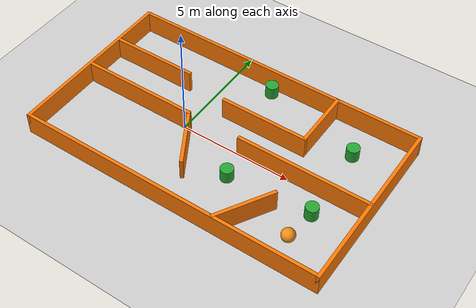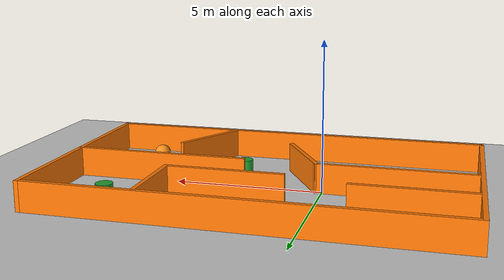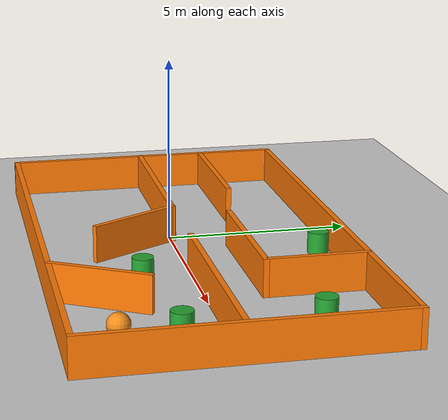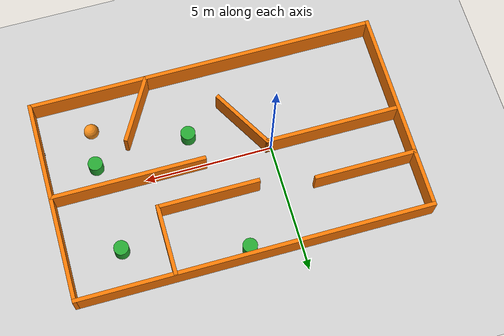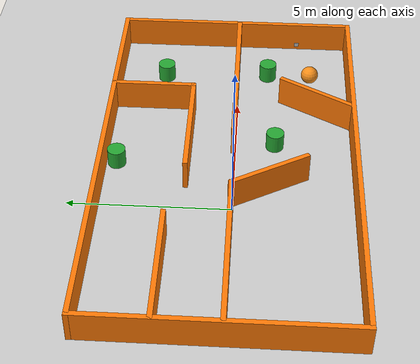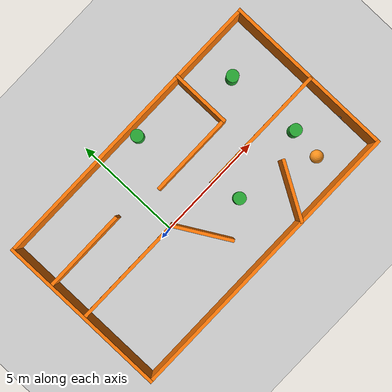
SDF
<sdf version="1.6">
 <world name="default">
  <model name="ground_plane">
   <static>1</static>
   <link name="link">
    <collision name="collision">
     <geometry><plane><normal>0 0 1</normal><size>100 100</size></plane></geometry>
     <surface><friction><ode><mu>100</mu><mu2>50</mu2></ode></friction></surface>
    </collision>
    <visual name="visual">
     <cast_shadows>0</cast_shadows>
     <geometry><plane><normal>0 0 1</normal><size>100 100</size></plane></geometry>
     <material>
      <script><uri>file://media/materials/scripts/gazebo.material</uri><name>Gazebo/Grey</name></script>
     </material>
    </visual>
   </link>
  </model>
  <model name="final_maze">
   <pose>1.767 0.166 0 0 -0 0</pose>
   <link name="Wall_0">
    <collision name="Wall_0_Collision">
     <geometry><box><size>8 0.15 1</size></box></geometry>
     <pose>0 0 0.5 0 -0 0</pose>
    </collision>
    <visual name="Wall_0_Visual">
     <pose>0 0 0.5 0 -0 0</pose>
     <geometry><box><size>8 0.15 1</size></box></geometry>
     <material>
      <script><uri>file://media/materials/scripts/gazebo.material</uri><name>Gazebo/Grey</name></script>
      <ambient>0.996078 0.47451 0.0196078 1</ambient>
     </material>
     <meta><layer>0</layer></meta>
    </visual>
    <pose>-6.8 0 0 0 -0 -1.5708</pose>
   </link>
   <link name="Wall_10">
    <collision name="Wall_10_Collision">
     <geometry><box><size>6 0.15 1</size></box></geometry>
     <pose>0 0 0.5 0 -0 0</pose>
    </collision>
    <visual name="Wall_10_Visual">
     <pose>0 0 0.5 0 -0 0</pose>
     <geometry><box><size>6 0.15 1</size></box></geometry>
     <material>
      <script><uri>file://media/materials/scripts/gazebo.material</uri><name>Gazebo/Grey</name></script>
      <ambient>0.996078 0.47451 0.0196078 1</ambient>
     </material>
     <meta><layer>0</layer></meta>
    </visual>
    <pose>3.835 -0.107 0 0 -0 0</pose>
   </link>
   <link name="Wall_12">
    <collision name="Wall_12_Collision">
     <geometry><box><size>2.75 0.15 1</size></box></geometry>
     <pose>0 0 0.5 0 -0 0</pose>
    </collision>
    <visual name="Wall_12_Visual">
     <pose>0 0 0.5 0 -0 0</pose>
     <geometry><box><size>2.75 0.15 1</size></box></geometry>
     <material>
      <script><uri>file://media/materials/scripts/gazebo.material</uri><name>Gazebo/Grey</name></script>
      <ambient>0.996078 0.47451 0.0196078 1</ambient>
     </material>
     <meta><layer>0</layer></meta>
    </visual>
    <pose>-0.92 -1.257 0 0 -0 -1.04726</pose>
   </link>
   <link name="Wall_14">
    <collision name="Wall_14_Collision">
     <geometry><box><size>2.75 0.15 1</size></box></geometry>
     <pose>0 0 0.5 0 -0 0</pose>
    </collision>
    <visual name="Wall_14_Visual">
     <pose>0 0 0.5 0 -0 0</pose>
     <geometry><box><size>2.75 0.15 1</size></box></geometry>
     <material>
      <script><uri>file://media/materials/scripts/gazebo.material</uri><name>Gazebo/Grey</name></script>
      <ambient>0.996078 0.47451 0.0196078 1</ambient>
     </material>
     <meta><layer>0</layer></meta>
    </visual>
    <pose>3.062 2.596 0 0 -0 -1.5708</pose>
   </link>
   <link name="Wall_16">
    <collision name="Wall_16_Collision">
     <geometry><box><size>4 0.15 1</size></box></geometry>
     <pose>0 0 0.5 0 -0 0</pose>
    </collision>
    <visual name="Wall_16_Visual">
     <pose>0 0 0.5 0 -0 0</pose>
     <geometry><box><size>4 0.15 1</size></box></geometry>
     <material>
      <script><uri>file://media/materials/scripts/gazebo.material</uri><name>Gazebo/Grey</name></script>
      <ambient>0.996078 0.47451 0.0196078 1</ambient>
     </material>
     <meta><layer>0</layer></meta>
    </visual>
    <pose>-4.862 1.764 0 0 -0 0</pose>
   </link>
   <link name="Wall_19">
    <collision name="Wall_19_Collision">
     <geometry><box><size>2.75 0.15 1</size></box></geometry>
     <pose>0 0 0.5 0 -0 0</pose>
    </collision>
    <visual name="Wall_19_Visual">
     <pose>0 0 0.5 0 -0 0</pose>
     <geometry><box><size>2.75 0.15 1</size></box></geometry>
     <material>
      <script><uri>file://media/materials/scripts/gazebo.material</uri><name>Gazebo/Grey</name></script>
      <ambient>0.996078 0.47451 0.0196078 1</ambient>
     </material>
     <meta><layer>0</layer></meta>
    </visual>
    <pose>2.908 -2.76468 0 0 -0 1.0472</pose>
   </link>
   <link name="Wall_23">
    <collision name="Wall_23_Collision">
     <geometry><box><size>4 0.15 1</size></box></geometry>
     <pose>0 0 0.5 0 -0 0</pose>
    </collision>
    <visual name="Wall_23_Visual">
     <pose>0 0 0.5 0 -0 0</pose>
     <geometry><box><size>4 0.15 1</size></box></geometry>
     <material>
      <script><uri>file://media/materials/scripts/gazebo.material</uri><name>Gazebo/Grey</name></script>
      <ambient>0.996078 0.47451 0.0196078 1</ambient>
     </material>
     <meta><layer>0</layer></meta>
    </visual>
    <pose>1.137 1.296 0 0 -0 3.14159</pose>
   </link>
   <link name="Wall_3">
    <collision name="Wall_3_Collision">
     <geometry><box><size>13.75 0.15 1</size></box></geometry>
     <pose>0 0 0.5 0 -0 0</pose>
    </collision>
    <visual name="Wall_3_Visual">
     <pose>0 0 0.5 0 -0 0</pose>
     <geometry><box><size>13.75 0.15 1</size></box></geometry>
     <material>
      <script><uri>file://media/materials/scripts/gazebo.material</uri><name>Gazebo/Grey</name></script>
      <ambient>0.996078 0.47451 0.0196078 1</ambient>
     </material>
     <meta><layer>0</layer></meta>
    </visual>
    <pose>-0 -3.925 0 0 -0 0</pose>
   </link>
   <link name="Wall_5">
    <collision name="Wall_5_Collision">
     <geometry><box><size>8 0.15 1</size></box></geometry>
     <pose>0 0 0.5 0 -0 0</pose>
    </collision>
    <visual name="Wall_5_Visual">
     <pose>0 0 0.5 0 -0 0</pose>
     <geometry><box><size>8 0.15 1</size></box></geometry>
     <material>
      <script><uri>file://media/materials/scripts/gazebo.material</uri><name>Gazebo/Grey</name></script>
      <ambient>0.996078 0.47451 0.0196078 1</ambient>
     </material>
     <meta><layer>0</layer></meta>
    </visual>
    <pose>6.8 0 0 0 -0 1.5708</pose>
   </link>
   <link name="Wall_6">
    <collision name="Wall_6_Collision">
     <geometry><box><size>13.75 0.15 1</size></box></geometry>
     <pose>0 0 0.5 0 -0 0</pose>
    </collision>
    <visual name="Wall_6_Visual">
     <pose>0 0 0.5 0 -0 0</pose>
     <geometry><box><size>13.75 0.15 1</size></box></geometry>
     <material>
      <script><uri>file://media/materials/scripts/gazebo.material</uri><name>Gazebo/Grey</name></script>
      <ambient>0.996078 0.47451 0.0196078 1</ambient>
     </material>
     <meta><layer>0</layer></meta>
    </visual>
    <pose>-0 3.925 0 0 -0 3.14159</pose>
   </link>
   <link name="Wall_8">
    <collision name="Wall_8_Collision">
     <geometry><box><size>5.32209 0.15 1</size></box></geometry>
     <pose>0 0 0.5 0 -0 0</pose>
    </collision>
    <visual name="Wall_8_Visual">
     <pose>0 0 0.5 0 -0 0</pose>
     <geometry><box><size>5.32209 0.15 1</size></box></geometry>
     <material>
      <script><uri>file://media/materials/scripts/gazebo.material</uri><name>Gazebo/Grey</name></script>
      <ambient>0.996078 0.47451 0.0196078 1</ambient>
     </material>
     <meta><layer>0</layer></meta>
    </visual>
    <pose>-4.156 -0.129 0 0 -0 -0.000773</pose>
   </link>
   <static>1</static>
  </model>
  <model name="unit_cylinder">
   <link name="link">
    <inertial>
     <mass>1</mass>
     <inertia><ixx>0.145833</ixx><ixy>0</ixy><ixz>0</ixz><iyy>0.145833</iyy><iyz>0</iyz><izz>0.125</izz></inertia>
    </inertial>
    <visual name="visual">
     <geometry><cylinder><radius>0.282119</radius><length>0.585064</length></cylinder></geometry>
     <material>
      <script><name>Gazebo/Green</name><uri>file://media/materials/scripts/gazebo.material</uri></script>
      <shader type="pixel"><normal_map>__default__</normal_map></shader>
      <ambient>0 1 0 1</ambient>
      <diffuse>0 1 0 1</diffuse>
      <specular>0.1 0.1 0.1 1</specular>
      <emissive>0 0 0 1</emissive>
     </material>
    </visual>
    <collision name="collision">
     <geometry><cylinder><radius>0.282119</radius><length>0.585064</length></cylinder></geometry>
     <surface>
      <friction>
       <ode><mu>1</mu><mu2>1</mu2><fdir1>0 0 0</fdir1><slip1>0</slip1><slip2>0</slip2></ode>
       <torsional>
        <coefficient>1</coefficient>
        <patch_radius>0</patch_radius>
        <surface_radius>0</surface_radius>
        <use_patch_radius>1</use_patch_radius>
        <ode><slip>0</slip></ode>
       </torsional>
      </friction>
      <bounce><restitution_coefficient>0</restitution_coefficient><threshold>1e+06</threshold></bounce>
      <contact>
       <collide_without_contact>0</collide_without_contact>
       <collide_without_contact_bitmask>1</collide_without_contact_bitmask>
       <collide_bitmask>1</collide_bitmask>
       <ode>
        <soft_cfm>0</soft_cfm>
        <soft_erp>0.2</soft_erp>
        <kp>1e+13</kp>
        <kd>1</kd>
        <max_vel>0.01</max_vel>
        <min_depth>0</min_depth>
       </ode>
       <bullet>
        <split_impulse>1</split_impulse>
        <split_impulse_penetration_threshold>-0.01</split_impulse_penetration_threshold>
        <soft_cfm>0</soft_cfm>
        <soft_erp>0.2</soft_erp>
        <kp>1e+13</kp>
        <kd>1</kd>
       </bullet>
      </contact>
     </surface>
    </collision>
   </link>
   <static>0</static>
   <pose>1.9138 3.68755 0.292529 1e-06 1e-06 0</pose>
  </model>
  <model name="unit_cylinder_clone_1">
   <link name="link">
    <inertial>
     <mass>1</mass>
     <inertia><ixx>0.145833</ixx><ixy>0</ixy><ixz>0</ixz><iyy>0.145833</iyy><iyz>0</iyz><izz>0.125</izz></inertia>
    </inertial>
    <visual name="visual">
     <geometry><cylinder><radius>0.282119</radius><length>0.585064</length></cylinder></geometry>
     <material>
      <script><name>Gazebo/Green</name><uri>file://media/materials/scripts/gazebo.material</uri></script>
      <shader type="pixel"><normal_map>__default__</normal_map></shader>
      <ambient>0 1 0 1</ambient>
      <diffuse>0 1 0 1</diffuse>
      <specular>0.1 0.1 0.1 1</specular>
      <emissive>0 0 0 1</emissive>
     </material>
    </visual>
    <collision name="collision">
     <geometry><cylinder><radius>0.282119</radius><length>0.585064</length></cylinder></geometry>
     <surface>
      <friction>
       <ode><mu>1</mu><mu2>1</mu2><fdir1>0 0 0</fdir1><slip1>0</slip1><slip2>0</slip2></ode>
       <torsional>
        <coefficient>1</coefficient>
        <patch_radius>0</patch_radius>
        <surface_radius>0</surface_radius>
        <use_patch_radius>1</use_patch_radius>
        <ode><slip>0</slip></ode>
       </torsional>
      </friction>
      <bounce><restitution_coefficient>0</restitution_coefficient><threshold>1e+06</threshold></bounce>
      <contact>
       <collide_without_contact>0</collide_without_contact>
       <collide_without_contact_bitmask>1</collide_without_contact_bitmask>
       <collide_bitmask>1</collide_bitmask>
       <ode>
        <soft_cfm>0</soft_cfm>
        <soft_erp>0.2</soft_erp>
        <kp>1e+13</kp>
        <kd>1</kd>
        <max_vel>0.01</max_vel>
        <min_depth>0</min_depth>
       </ode>
       <bullet>
        <split_impulse>1</split_impulse>
        <split_impulse_penetration_threshold>-0.01</split_impulse_penetration_threshold>
        <soft_cfm>0</soft_cfm>
        <soft_erp>0.2</soft_erp>
        <kp>1e+13</kp>
        <kd>1</kd>
       </bullet>
      </contact>
     </surface>
    </collision>
   </link>
   <static>0</static>
   <pose>6.68011 -0.986426 0.292525 -1e-06 -1e-06 0</pose>
  </model>
  <model name="unit_cylinder_clone_2">
   <link name="link">
    <inertial>
     <mass>1</mass>
     <inertia><ixx>0.145833</ixx><ixy>0</ixy><ixz>0</ixz><iyy>0.145833</iyy><iyz>0</iyz><izz>0.125</izz></inertia>
    </inertial>
    <visual name="visual">
     <geometry><cylinder><radius>0.282119</radius><length>0.585064</length></cylinder></geometry>
     <material>
      <script><name>Gazebo/Green</name><uri>file://media/materials/scripts/gazebo.material</uri></script>
      <shader type="pixel"><normal_map>__default__</normal_map></shader>
      <ambient>0 1 0 1</ambient>
      <diffuse>0 1 0 1</diffuse>
      <specular>0.1 0.1 0.1 1</specular>
      <emissive>0 0 0 1</emissive>
     </material>
    </visual>
    <collision name="collision">
     <geometry><cylinder><radius>0.282119</radius><length>0.585064</length></cylinder></geometry>
     <surface>
      <friction>
       <ode><mu>1</mu><mu2>1</mu2><fdir1>0 0 0</fdir1><slip1>0</slip1><slip2>0</slip2></ode>
       <torsional>
        <coefficient>1</coefficient>
        <patch_radius>0</patch_radius>
        <surface_radius>0</surface_radius>
        <use_patch_radius>1</use_patch_radius>
        <ode><slip>0</slip></ode>
       </torsional>
      </friction>
      <bounce><restitution_coefficient>0</restitution_coefficient><threshold>1e+06</threshold></bounce>
      <contact>
       <collide_without_contact>0</collide_without_contact>
       <collide_without_contact_bitmask>1</collide_without_contact_bitmask>
       <collide_bitmask>1</collide_bitmask>
       <ode>
        <soft_cfm>0</soft_cfm>
        <soft_erp>0.2</soft_erp>
        <kp>1e+13</kp>
        <kd>1</kd>
        <max_vel>0.01</max_vel>
        <min_depth>0</min_depth>
       </ode>
       <bullet>
        <split_impulse>1</split_impulse>
        <split_impulse_penetration_threshold>-0.01</split_impulse_penetration_threshold>
        <soft_cfm>0</soft_cfm>
        <soft_erp>0.2</soft_erp>
        <kp>1e+13</kp>
        <kd>1</kd>
       </bullet>
      </contact>
     </surface>
    </collision>
   </link>
   <static>0</static>
   <pose>6.50384 2.50044 0.292525 -1e-06 -1e-06 0</pose>
  </model>
  <model name="unit_cylinder_clone_3">
   <link name="link">
    <inertial>
     <mass>1</mass>
     <inertia><ixx>0.145833</ixx><ixy>0</ixy><ixz>0</ixz><iyy>0.145833</iyy><iyz>0</iyz><izz>0.125</izz></inertia>
    </inertial>
    <visual name="visual">
     <geometry><cylinder><radius>0.282119</radius><length>0.585064</length></cylinder></geometry>
     <material>
      <script><name>Gazebo/Green</name><uri>file://media/materials/scripts/gazebo.material</uri></script>
      <shader type="pixel"><normal_map>__default__</normal_map></shader>
      <ambient>0 1 0 1</ambient>
      <diffuse>0 1 0 1</diffuse>
      <specular>0.1 0.1 0.1 1</specular>
      <emissive>0 0 0 1</emissive>
     </material>
    </visual>
    <collision name="collision">
     <geometry><cylinder><radius>0.282119</radius><length>0.585064</length></cylinder></geometry>
     <surface>
      <friction>
       <ode><mu>1</mu><mu2>1</mu2><fdir1>0 0 0</fdir1><slip1>0</slip1><slip2>0</slip2></ode>
       <torsional>
        <coefficient>1</coefficient>
        <patch_radius>0</patch_radius>
        <surface_radius>0</surface_radius>
        <use_patch_radius>1</use_patch_radius>
        <ode><slip>0</slip></ode>
       </torsional>
      </friction>
      <bounce><restitution_coefficient>0</restitution_coefficient><threshold>1e+06</threshold></bounce>
      <contact>
       <collide_without_contact>0</collide_without_contact>
       <collide_without_contact_bitmask>1</collide_without_contact_bitmask>
       <collide_bitmask>1</collide_bitmask>
       <ode>
        <soft_cfm>0</soft_cfm>
        <soft_erp>0.2</soft_erp>
        <kp>1e+13</kp>
        <kd>1</kd>
        <max_vel>0.01</max_vel>
        <min_depth>0</min_depth>
       </ode>
       <bullet>
        <split_impulse>1</split_impulse>
        <split_impulse_penetration_threshold>-0.01</split_impulse_penetration_threshold>
        <soft_cfm>0</soft_cfm>
        <soft_erp>0.2</soft_erp>
        <kp>1e+13</kp>
        <kd>1</kd>
       </bullet>
      </contact>
     </surface>
    </collision>
   </link>
   <static>0</static>
   <pose>2.97756 -1.25738 0.292525 -1e-06 -1e-06 0</pose>
  </model>
  <model name="aruco_marker_2">
   <static>0</static>
   <link name="link">
    <gravity>0</gravity>
    <inertial>
     <mass>0.001</mass>
     <inertia>
      <ixx>3.75e-06</ixx>
      <ixy>0</ixy>
      <ixz>0</ixz>
      <iyy>1.875e-06</iyy>
      <iyz>0</iyz>
      <izz>1.875e-06</izz>
     </inertia>
    </inertial>
    <visual name="front_visual">
     <pose>5e-05 0 0 0 -0 0</pose>
     <geometry><box><size>0.0001 0.15 0.15</size></box></geometry>
     <material>
      <script>
       <uri>model://aruco_marker_2/materials/scripts</uri>
       <uri>model://aruco_marker_2/materials/textures</uri>
       <name>aruco_marker_2</name>
      </script>
     </material>
    </visual>
    <visual name="rear_visual">
     <pose>-5e-05 0 0 0 -0 0</pose>
     <geometry><box><size>0.0001 0.15 0.15</size></box></geometry>
    </visual>
    <collision name="collision"><geometry><box><size>0.0001 0.15 0.15</size></box></geometry></collision>
   </link>
   <pose>8.46068 -2 0.2 0 0 -3.14159</pose>
  </model>
  <model name="unit_sphere">
   <link name="link">
    <inertial>
     <mass>1</mass>
     <inertia><ixx>0.1</ixx><ixy>0</ixy><ixz>0</ixz><iyy>0.1</iyy><iyz>0</iyz><izz>0.1</izz></inertia>
    </inertial>
    <visual name="visual">
     <geometry><sphere><radius>0.291395</radius></sphere></geometry>
     <material>
      <script><name>Gazebo/Orange</name><uri>file://media/materials/scripts/gazebo.material</uri></script>
      <shader type="pixel"><normal_map>__default__</normal_map></shader>
      <ambient>1 0.509 0.047 1</ambient>
      <diffuse>1 0.509 0.047 1</diffuse>
      <specular>0.5 0.5 0.5 1</specular>
      <emissive>0 0 0 1</emissive>
     </material>
    </visual>
    <collision name="collision">
     <geometry><sphere><radius>0.291395</radius></sphere></geometry>
     <surface>
      <friction>
       <ode><mu>1</mu><mu2>1</mu2><fdir1>0 0 0</fdir1><slip1>0</slip1><slip2>0</slip2></ode>
       <torsional>
        <coefficient>1</coefficient>
        <patch_radius>0</patch_radius>
        <surface_radius>0</surface_radius>
        <use_patch_radius>1</use_patch_radius>
        <ode><slip>0</slip></ode>
       </torsional>
      </friction>
      <bounce><restitution_coefficient>0</restitution_coefficient><threshold>1e+06</threshold></bounce>
      <contact>
       <collide_without_contact>0</collide_without_contact>
       <collide_without_contact_bitmask>1</collide_without_contact_bitmask>
       <collide_bitmask>1</collide_bitmask>
       <ode>
        <soft_cfm>0</soft_cfm>
        <soft_erp>0.2</soft_erp>
        <kp>1e+13</kp>
        <kd>1</kd>
        <max_vel>0.01</max_vel>
        <min_depth>0</min_depth>
       </ode>
       <bullet>
        <split_impulse>1</split_impulse>
        <split_impulse_penetration_threshold>-0.01</split_impulse_penetration_threshold>
        <soft_cfm>0</soft_cfm>
        <soft_erp>0.2</soft_erp>
        <kp>1e+13</kp>
        <kd>1</kd>
       </bullet>
      </contact>
     </surface>
    </collision>
   </link>
   <static>0</static>
   <pose>6.53534 -2.42522 0.291395 0 -0 0</pose>
  </model>
 </world>
</sdf>
